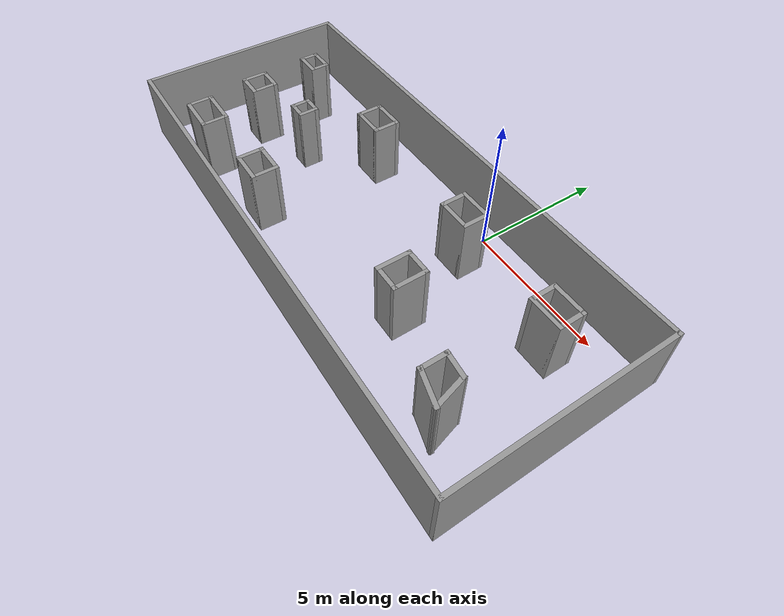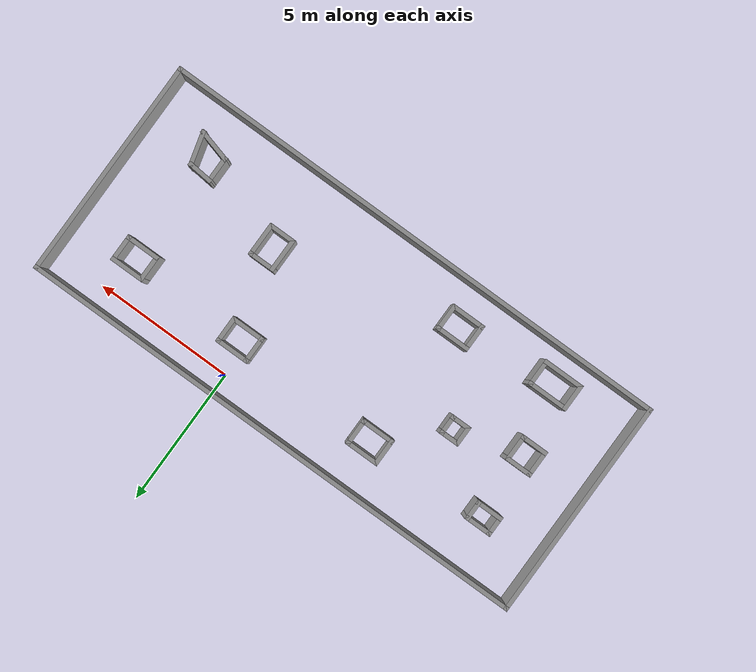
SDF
<?xml version='1.0'?>
<sdf version='1.6'>
  <model name='simple'>
    <pose frame=''>-2.4487 -3.24847 0 0 -0 0</pose>
    <link name='Wall_0'>
      <collision name='Wall_0_Collision'>
        <geometry>
          <box>
            <size>8 0.15 2.5</size>
          </box>
        </geometry>
        <pose frame=''>0 0 1.25 0 -0 0</pose>
      </collision>
      <visual name='Wall_0_Visual'>
        <pose frame=''>0 0 1.25 0 -0 0</pose>
        <geometry>
          <box>
            <size>8 0.15 2.5</size>
          </box>
        </geometry>
        <material>
          <script>
            <uri>file://media/materials/scripts/gazebo.material</uri>
            <name>Gazebo/Grey</name>
          </script>
          <ambient>1 1 1 1</ambient>
        </material>
        <meta>
          <layer>0</layer>
        </meta>
      </visual>
      <pose frame=''>-9.3 0 0 0 -0 -1.5708</pose>
    </link>
    <link name='Wall_1'>
      <collision name='Wall_1_Collision'>
        <geometry>
          <box>
            <size>18.75 0.15 2.5</size>
          </box>
        </geometry>
        <pose frame=''>0 0 1.25 0 -0 0</pose>
      </collision>
      <visual name='Wall_1_Visual'>
        <pose frame=''>0 0 1.25 0 -0 0</pose>
        <geometry>
          <box>
            <size>18.75 0.15 2.5</size>
          </box>
        </geometry>
        <material>
          <script>
            <uri>file://media/materials/scripts/gazebo.material</uri>
            <name>Gazebo/Grey</name>
          </script>
          <ambient>1 1 1 1</ambient>
        </material>
        <meta>
          <layer>0</layer>
        </meta>
      </visual>
      <pose frame=''>0 -3.925 0 0 -0 0</pose>
    </link>
    <link name='Wall_10'>
      <collision name='Wall_10_Collision'>
        <geometry>
          <box>
            <size>1 0.15 2.5</size>
          </box>
        </geometry>
        <pose frame=''>0 0 1.25 0 -0 0</pose>
      </collision>
      <visual name='Wall_10_Visual'>
        <pose frame=''>0 0 1.25 0 -0 0</pose>
        <geometry>
          <box>
            <size>1 0.15 2.5</size>
          </box>
        </geometry>
        <material>
          <script>
            <uri>file://media/materials/scripts/gazebo.material</uri>
            <name>Gazebo/Grey</name>
          </script>
          <ambient>1 1 1 1</ambient>
        </material>
        <meta>
          <layer>0</layer>
        </meta>
      </visual>
      <pose frame=''>-7.38016 -0.409073 0 0 -0 -1.5708</pose>
    </link>
    <link name='Wall_11'>
      <collision name='Wall_11_Collision'>
        <geometry>
          <box>
            <size>1 0.15 2.5</size>
          </box>
        </geometry>
        <pose frame=''>0 0 1.25 0 -0 0</pose>
      </collision>
      <visual name='Wall_11_Visual'>
        <pose frame=''>0 0 1.25 0 -0 0</pose>
        <geometry>
          <box>
            <size>1 0.15 2.5</size>
          </box>
        </geometry>
        <material>
          <script>
            <uri>file://media/materials/scripts/gazebo.material</uri>
            <name>Gazebo/Grey</name>
          </script>
          <ambient>1 1 1 1</ambient>
        </material>
        <meta>
          <layer>0</layer>
        </meta>
      </visual>
      <pose frame=''>-6.95516 -0.834073 0 0 -0 0</pose>
    </link>
    <link name='Wall_12'>
      <collision name='Wall_12_Collision'>
        <geometry>
          <box>
            <size>1 0.15 2.5</size>
          </box>
        </geometry>
        <pose frame=''>0 0 1.25 0 -0 0</pose>
      </collision>
      <visual name='Wall_12_Visual'>
        <pose frame=''>0 0 1.25 0 -0 0</pose>
        <geometry>
          <box>
            <size>1 0.15 2.5</size>
          </box>
        </geometry>
        <material>
          <script>
            <uri>file://media/materials/scripts/gazebo.material</uri>
            <name>Gazebo/Grey</name>
          </script>
          <ambient>1 1 1 1</ambient>
        </material>
        <meta>
          <layer>0</layer>
        </meta>
      </visual>
      <pose frame=''>-6.53016 -0.409073 0 0 -0 1.5708</pose>
    </link>
    <link name='Wall_13'>
      <collision name='Wall_13_Collision'>
        <geometry>
          <box>
            <size>1 0.15 2.5</size>
          </box>
        </geometry>
        <pose frame=''>0 0 1.25 0 -0 0</pose>
      </collision>
      <visual name='Wall_13_Visual'>
        <pose frame=''>0 0 1.25 0 -0 0</pose>
        <geometry>
          <box>
            <size>1 0.15 2.5</size>
          </box>
        </geometry>
        <material>
          <script>
            <uri>file://media/materials/scripts/gazebo.material</uri>
            <name>Gazebo/Grey</name>
          </script>
          <ambient>1 1 1 1</ambient>
        </material>
        <meta>
          <layer>0</layer>
        </meta>
      </visual>
      <pose frame=''>-6.95516 0.015927 0 0 -0 3.14159</pose>
    </link>
    <link name='Wall_15'>
      <collision name='Wall_15_Collision'>
        <geometry>
          <box>
            <size>1 0.15 2.5</size>
          </box>
        </geometry>
        <pose frame=''>0 0 1.25 0 -0 0</pose>
      </collision>
      <visual name='Wall_15_Visual'>
        <pose frame=''>0 0 1.25 0 -0 0</pose>
        <geometry>
          <box>
            <size>1 0.15 2.5</size>
          </box>
        </geometry>
        <material>
          <script>
            <uri>file://media/materials/scripts/gazebo.material</uri>
            <name>Gazebo/Grey</name>
          </script>
          <ambient>1 1 1 1</ambient>
        </material>
        <meta>
          <layer>0</layer>
        </meta>
      </visual>
      <pose frame=''>-7.05633 -2.79153 0 0 -0 -1.5708</pose>
    </link>
    <link name='Wall_16'>
      <collision name='Wall_16_Collision'>
        <geometry>
          <box>
            <size>1.5 0.15 2.5</size>
          </box>
        </geometry>
        <pose frame=''>0 0 1.25 0 -0 0</pose>
      </collision>
      <visual name='Wall_16_Visual'>
        <pose frame=''>0 0 1.25 0 -0 0</pose>
        <geometry>
          <box>
            <size>1.5 0.15 2.5</size>
          </box>
        </geometry>
        <material>
          <script>
            <uri>file://media/materials/scripts/gazebo.material</uri>
            <name>Gazebo/Grey</name>
          </script>
          <ambient>1 1 1 1</ambient>
        </material>
        <meta>
          <layer>0</layer>
        </meta>
      </visual>
      <pose frame=''>-6.38133 -3.21652 0 0 -0 0</pose>
    </link>
    <link name='Wall_17'>
      <collision name='Wall_17_Collision'>
        <geometry>
          <box>
            <size>1 0.15 2.5</size>
          </box>
        </geometry>
        <pose frame=''>0 0 1.25 0 -0 0</pose>
      </collision>
      <visual name='Wall_17_Visual'>
        <pose frame=''>0 0 1.25 0 -0 0</pose>
        <geometry>
          <box>
            <size>1 0.15 2.5</size>
          </box>
        </geometry>
        <material>
          <script>
            <uri>file://media/materials/scripts/gazebo.material</uri>
            <name>Gazebo/Grey</name>
          </script>
          <ambient>1 1 1 1</ambient>
        </material>
        <meta>
          <layer>0</layer>
        </meta>
      </visual>
      <pose frame=''>-5.70633 -2.79153 0 0 -0 1.5708</pose>
    </link>
    <link name='Wall_18'>
      <collision name='Wall_18_Collision'>
        <geometry>
          <box>
            <size>1.5 0.15 2.5</size>
          </box>
        </geometry>
        <pose frame=''>0 0 1.25 0 -0 0</pose>
      </collision>
      <visual name='Wall_18_Visual'>
        <pose frame=''>0 0 1.25 0 -0 0</pose>
        <geometry>
          <box>
            <size>1.5 0.15 2.5</size>
          </box>
        </geometry>
        <material>
          <script>
            <uri>file://media/materials/scripts/gazebo.material</uri>
            <name>Gazebo/Grey</name>
          </script>
          <ambient>1 1 1 1</ambient>
        </material>
        <meta>
          <layer>0</layer>
        </meta>
      </visual>
      <pose frame=''>-6.38133 -2.36653 0 0 -0 3.14159</pose>
    </link>
    <link name='Wall_2'>
      <collision name='Wall_2_Collision'>
        <geometry>
          <box>
            <size>8 0.15 2.5</size>
          </box>
        </geometry>
        <pose frame=''>0 0 1.25 0 -0 0</pose>
      </collision>
      <visual name='Wall_2_Visual'>
        <pose frame=''>0 0 1.25 0 -0 0</pose>
        <geometry>
          <box>
            <size>8 0.15 2.5</size>
          </box>
        </geometry>
        <material>
          <script>
            <uri>file://media/materials/scripts/gazebo.material</uri>
            <name>Gazebo/Grey</name>
          </script>
          <ambient>1 1 1 1</ambient>
        </material>
        <meta>
          <layer>0</layer>
        </meta>
      </visual>
      <pose frame=''>9.3 0 0 0 -0 1.5708</pose>
    </link>
    <link name='Wall_20'>
      <collision name='Wall_20_Collision'>
        <geometry>
          <box>
            <size>1 0.15 2.5</size>
          </box>
        </geometry>
        <pose frame=''>0 0 1.25 0 -0 0</pose>
      </collision>
      <visual name='Wall_20_Visual'>
        <pose frame=''>0 0 1.25 0 -0 0</pose>
        <geometry>
          <box>
            <size>1 0.15 2.5</size>
          </box>
        </geometry>
        <material>
          <script>
            <uri>file://media/materials/scripts/gazebo.material</uri>
            <name>Gazebo/Grey</name>
          </script>
          <ambient>1 1 1 1</ambient>
        </material>
        <meta>
          <layer>0</layer>
        </meta>
      </visual>
      <pose frame=''>-3.19352 2.18156 0 0 -0 -1.5708</pose>
    </link>
    <link name='Wall_21'>
      <collision name='Wall_21_Collision'>
        <geometry>
          <box>
            <size>1.25 0.15 2.5</size>
          </box>
        </geometry>
        <pose frame=''>0 0 1.25 0 -0 0</pose>
      </collision>
      <visual name='Wall_21_Visual'>
        <pose frame=''>0 0 1.25 0 -0 0</pose>
        <geometry>
          <box>
            <size>1.25 0.15 2.5</size>
          </box>
        </geometry>
        <material>
          <script>
            <uri>file://media/materials/scripts/gazebo.material</uri>
            <name>Gazebo/Grey</name>
          </script>
          <ambient>1 1 1 1</ambient>
        </material>
        <meta>
          <layer>0</layer>
        </meta>
      </visual>
      <pose frame=''>-2.64352 1.75656 0 0 -0 0</pose>
    </link>
    <link name='Wall_22'>
      <collision name='Wall_22_Collision'>
        <geometry>
          <box>
            <size>1 0.15 2.5</size>
          </box>
        </geometry>
        <pose frame=''>0 0 1.25 0 -0 0</pose>
      </collision>
      <visual name='Wall_22_Visual'>
        <pose frame=''>0 0 1.25 0 -0 0</pose>
        <geometry>
          <box>
            <size>1 0.15 2.5</size>
          </box>
        </geometry>
        <material>
          <script>
            <uri>file://media/materials/scripts/gazebo.material</uri>
            <name>Gazebo/Grey</name>
          </script>
          <ambient>1 1 1 1</ambient>
        </material>
        <meta>
          <layer>0</layer>
        </meta>
      </visual>
      <pose frame=''>-2.09352 2.18156 0 0 -0 1.5708</pose>
    </link>
    <link name='Wall_23'>
      <collision name='Wall_23_Collision'>
        <geometry>
          <box>
            <size>1.25 0.15 2.5</size>
          </box>
        </geometry>
        <pose frame=''>0 0 1.25 0 -0 0</pose>
      </collision>
      <visual name='Wall_23_Visual'>
        <pose frame=''>0 0 1.25 0 -0 0</pose>
        <geometry>
          <box>
            <size>1.25 0.15 2.5</size>
          </box>
        </geometry>
        <material>
          <script>
            <uri>file://media/materials/scripts/gazebo.material</uri>
            <name>Gazebo/Grey</name>
          </script>
          <ambient>1 1 1 1</ambient>
        </material>
        <meta>
          <layer>0</layer>
        </meta>
      </visual>
      <pose frame=''>-2.64352 2.60656 0 0 -0 3.14159</pose>
    </link>
    <link name='Wall_3'>
      <collision name='Wall_3_Collision'>
        <geometry>
          <box>
            <size>18.75 0.15 2.5</size>
          </box>
        </geometry>
        <pose frame=''>0 0 1.25 0 -0 0</pose>
      </collision>
      <visual name='Wall_3_Visual'>
        <pose frame=''>0 0 1.25 0 -0 0</pose>
        <geometry>
          <box>
            <size>18.75 0.15 2.5</size>
          </box>
        </geometry>
        <material>
          <script>
            <uri>file://media/materials/scripts/gazebo.material</uri>
            <name>Gazebo/Grey</name>
          </script>
          <ambient>1 1 1 1</ambient>
        </material>
        <meta>
          <layer>0</layer>
        </meta>
      </visual>
      <pose frame=''>0 3.925 0 0 -0 3.14159</pose>
    </link>
    <link name='Wall_30'>
      <collision name='Wall_30_Collision'>
        <geometry>
          <box>
            <size>1 0.15 2.5</size>
          </box>
        </geometry>
        <pose frame=''>0 0 1.25 0 -0 0</pose>
      </collision>
      <visual name='Wall_30_Visual'>
        <pose frame=''>0 0 1.25 0 -0 0</pose>
        <geometry>
          <box>
            <size>1 0.15 2.5</size>
          </box>
        </geometry>
        <material>
          <script>
            <uri>file://media/materials/scripts/gazebo.material</uri>
            <name>Gazebo/Grey</name>
          </script>
          <ambient>1 1 1 1</ambient>
        </material>
        <meta>
          <layer>0</layer>
        </meta>
      </visual>
      <pose frame=''>-3.37856 -2.49083 0 0 -0 -1.5708</pose>
    </link>
    <link name='Wall_31'>
      <collision name='Wall_31_Collision'>
        <geometry>
          <box>
            <size>1.25 0.15 2.5</size>
          </box>
        </geometry>
        <pose frame=''>0 0 1.25 0 -0 0</pose>
      </collision>
      <visual name='Wall_31_Visual'>
        <pose frame=''>0 0 1.25 0 -0 0</pose>
        <geometry>
          <box>
            <size>1.25 0.15 2.5</size>
          </box>
        </geometry>
        <material>
          <script>
            <uri>file://media/materials/scripts/gazebo.material</uri>
            <name>Gazebo/Grey</name>
          </script>
          <ambient>1 1 1 1</ambient>
        </material>
        <meta>
          <layer>0</layer>
        </meta>
      </visual>
      <pose frame=''>-2.82856 -2.91583 0 0 -0 0</pose>
    </link>
    <link name='Wall_32'>
      <collision name='Wall_32_Collision'>
        <geometry>
          <box>
            <size>1 0.15 2.5</size>
          </box>
        </geometry>
        <pose frame=''>0 0 1.25 0 -0 0</pose>
      </collision>
      <visual name='Wall_32_Visual'>
        <pose frame=''>0 0 1.25 0 -0 0</pose>
        <geometry>
          <box>
            <size>1 0.15 2.5</size>
          </box>
        </geometry>
        <material>
          <script>
            <uri>file://media/materials/scripts/gazebo.material</uri>
            <name>Gazebo/Grey</name>
          </script>
          <ambient>1 1 1 1</ambient>
        </material>
        <meta>
          <layer>0</layer>
        </meta>
      </visual>
      <pose frame=''>-2.27856 -2.49083 0 0 -0 1.5708</pose>
    </link>
    <link name='Wall_33'>
      <collision name='Wall_33_Collision'>
        <geometry>
          <box>
            <size>1.25 0.15 2.5</size>
          </box>
        </geometry>
        <pose frame=''>0 0 1.25 0 -0 0</pose>
      </collision>
      <visual name='Wall_33_Visual'>
        <pose frame=''>0 0 1.25 0 -0 0</pose>
        <geometry>
          <box>
            <size>1.25 0.15 2.5</size>
          </box>
        </geometry>
        <material>
          <script>
            <uri>file://media/materials/scripts/gazebo.material</uri>
            <name>Gazebo/Grey</name>
          </script>
          <ambient>1 1 1 1</ambient>
        </material>
        <meta>
          <layer>0</layer>
        </meta>
      </visual>
      <pose frame=''>-2.82856 -2.06583 0 0 -0 3.14159</pose>
    </link>
    <link name='Wall_35'>
      <collision name='Wall_35_Collision'>
        <geometry>
          <box>
            <size>1 0.15 2.5</size>
          </box>
        </geometry>
        <pose frame=''>0 0 1.25 0 -0 0</pose>
      </collision>
      <visual name='Wall_35_Visual'>
        <pose frame=''>0 0 1.25 0 -0 0</pose>
        <geometry>
          <box>
            <size>1 0.15 2.5</size>
          </box>
        </geometry>
        <material>
          <script>
            <uri>file://media/materials/scripts/gazebo.material</uri>
            <name>Gazebo/Grey</name>
          </script>
          <ambient>1 1 1 1</ambient>
        </material>
        <meta>
          <layer>0</layer>
        </meta>
      </visual>
      <pose frame=''>2.10339 1.97338 0 0 -0 -1.5708</pose>
    </link>
    <link name='Wall_36'>
      <collision name='Wall_36_Collision'>
        <geometry>
          <box>
            <size>1.25 0.15 2.5</size>
          </box>
        </geometry>
        <pose frame=''>0 0 1.25 0 -0 0</pose>
      </collision>
      <visual name='Wall_36_Visual'>
        <pose frame=''>0 0 1.25 0 -0 0</pose>
        <geometry>
          <box>
            <size>1.25 0.15 2.5</size>
          </box>
        </geometry>
        <material>
          <script>
            <uri>file://media/materials/scripts/gazebo.material</uri>
            <name>Gazebo/Grey</name>
          </script>
          <ambient>1 1 1 1</ambient>
        </material>
        <meta>
          <layer>0</layer>
        </meta>
      </visual>
      <pose frame=''>2.65339 1.54838 0 0 -0 0</pose>
    </link>
    <link name='Wall_37'>
      <collision name='Wall_37_Collision'>
        <geometry>
          <box>
            <size>1 0.15 2.5</size>
          </box>
        </geometry>
        <pose frame=''>0 0 1.25 0 -0 0</pose>
      </collision>
      <visual name='Wall_37_Visual'>
        <pose frame=''>0 0 1.25 0 -0 0</pose>
        <geometry>
          <box>
            <size>1 0.15 2.5</size>
          </box>
        </geometry>
        <material>
          <script>
            <uri>file://media/materials/scripts/gazebo.material</uri>
            <name>Gazebo/Grey</name>
          </script>
          <ambient>1 1 1 1</ambient>
        </material>
        <meta>
          <layer>0</layer>
        </meta>
      </visual>
      <pose frame=''>3.20339 1.97338 0 0 -0 1.5708</pose>
    </link>
    <link name='Wall_38'>
      <collision name='Wall_38_Collision'>
        <geometry>
          <box>
            <size>1.25 0.15 2.5</size>
          </box>
        </geometry>
        <pose frame=''>0 0 1.25 0 -0 0</pose>
      </collision>
      <visual name='Wall_38_Visual'>
        <pose frame=''>0 0 1.25 0 -0 0</pose>
        <geometry>
          <box>
            <size>1.25 0.15 2.5</size>
          </box>
        </geometry>
        <material>
          <script>
            <uri>file://media/materials/scripts/gazebo.material</uri>
            <name>Gazebo/Grey</name>
          </script>
          <ambient>1 1 1 1</ambient>
        </material>
        <meta>
          <layer>0</layer>
        </meta>
      </visual>
      <pose frame=''>2.65339 2.39838 0 0 -0 3.14159</pose>
    </link>
    <link name='Wall_40'>
      <collision name='Wall_40_Collision'>
        <geometry>
          <box>
            <size>1.25 0.15 2.5</size>
          </box>
        </geometry>
        <pose frame=''>0 0 1.25 0 -0 0</pose>
      </collision>
      <visual name='Wall_40_Visual'>
        <pose frame=''>0 0 1.25 0 -0 0</pose>
        <geometry>
          <box>
            <size>1.25 0.15 2.5</size>
          </box>
        </geometry>
        <material>
          <script>
            <uri>file://media/materials/scripts/gazebo.material</uri>
            <name>Gazebo/Grey</name>
          </script>
          <ambient>1 1 1 1</ambient>
        </material>
        <meta>
          <layer>0</layer>
        </meta>
      </visual>
      <pose frame=''>3.14427 -1.01982 0 0 -0 -1.5708</pose>
    </link>
    <link name='Wall_41'>
      <collision name='Wall_41_Collision'>
        <geometry>
          <box>
            <size>1 0.15 2.5</size>
          </box>
        </geometry>
        <pose frame=''>0 0 1.25 0 -0 0</pose>
      </collision>
      <visual name='Wall_41_Visual'>
        <pose frame=''>0 0 1.25 0 -0 0</pose>
        <geometry>
          <box>
            <size>1 0.15 2.5</size>
          </box>
        </geometry>
        <material>
          <script>
            <uri>file://media/materials/scripts/gazebo.material</uri>
            <name>Gazebo/Grey</name>
          </script>
          <ambient>1 1 1 1</ambient>
        </material>
        <meta>
          <layer>0</layer>
        </meta>
      </visual>
      <pose frame=''>3.56927 -1.56981 0 0 -0 0</pose>
    </link>
    <link name='Wall_42'>
      <collision name='Wall_42_Collision'>
        <geometry>
          <box>
            <size>1.25 0.15 2.5</size>
          </box>
        </geometry>
        <pose frame=''>0 0 1.25 0 -0 0</pose>
      </collision>
      <visual name='Wall_42_Visual'>
        <pose frame=''>0 0 1.25 0 -0 0</pose>
        <geometry>
          <box>
            <size>1.25 0.15 2.5</size>
          </box>
        </geometry>
        <material>
          <script>
            <uri>file://media/materials/scripts/gazebo.material</uri>
            <name>Gazebo/Grey</name>
          </script>
          <ambient>1 1 1 1</ambient>
        </material>
        <meta>
          <layer>0</layer>
        </meta>
      </visual>
      <pose frame=''>3.99427 -1.01982 0 0 -0 1.5708</pose>
    </link>
    <link name='Wall_43'>
      <collision name='Wall_43_Collision'>
        <geometry>
          <box>
            <size>1 0.15 2.5</size>
          </box>
        </geometry>
        <pose frame=''>0 0 1.25 0 -0 0</pose>
      </collision>
      <visual name='Wall_43_Visual'>
        <pose frame=''>0 0 1.25 0 -0 0</pose>
        <geometry>
          <box>
            <size>1 0.15 2.5</size>
          </box>
        </geometry>
        <material>
          <script>
            <uri>file://media/materials/scripts/gazebo.material</uri>
            <name>Gazebo/Grey</name>
          </script>
          <ambient>1 1 1 1</ambient>
        </material>
        <meta>
          <layer>0</layer>
        </meta>
      </visual>
      <pose frame=''>3.56927 -0.469815 0 0 -0 3.14159</pose>
    </link>
    <link name='Wall_45'>
      <collision name='Wall_45_Collision'>
        <geometry>
          <box>
            <size>1 0.15 2.5</size>
          </box>
        </geometry>
        <pose frame=''>0 0 1.25 0 -0 0</pose>
      </collision>
      <visual name='Wall_45_Visual'>
        <pose frame=''>0 0 1.25 0 -0 0</pose>
        <geometry>
          <box>
            <size>1 0.15 2.5</size>
          </box>
        </geometry>
        <material>
          <script>
            <uri>file://media/materials/scripts/gazebo.material</uri>
            <name>Gazebo/Grey</name>
          </script>
          <ambient>1 1 1 1</ambient>
        </material>
        <meta>
          <layer>0</layer>
        </meta>
      </visual>
      <pose frame=''>6.45194 -2.00508 0 0 -0 -1.5708</pose>
    </link>
    <link name='Wall_46'>
      <collision name='Wall_46_Collision'>
        <geometry>
          <box>
            <size>1.25 0.15 2.5</size>
          </box>
        </geometry>
        <pose frame=''>0 0 1.25 0 -0 0</pose>
      </collision>
      <visual name='Wall_46_Visual'>
        <pose frame=''>0 0 1.25 0 -0 0</pose>
        <geometry>
          <box>
            <size>1.25 0.15 2.5</size>
          </box>
        </geometry>
        <material>
          <script>
            <uri>file://media/materials/scripts/gazebo.material</uri>
            <name>Gazebo/Grey</name>
          </script>
          <ambient>1 1 1 1</ambient>
        </material>
        <meta>
          <layer>0</layer>
        </meta>
      </visual>
      <pose frame=''>6.9832 -2.57244 0 0 -0 -0.261799</pose>
    </link>
    <link name='Wall_47'>
      <collision name='Wall_47_Collision'>
        <geometry>
          <box>
            <size>1.25 0.15 2.5</size>
          </box>
        </geometry>
        <pose frame=''>0 0 1.25 0 -0 0</pose>
      </collision>
      <visual name='Wall_47_Visual'>
        <pose frame=''>0 0 1.25 0 -0 0</pose>
        <geometry>
          <box>
            <size>1.25 0.15 2.5</size>
          </box>
        </geometry>
        <material>
          <script>
            <uri>file://media/materials/scripts/gazebo.material</uri>
            <name>Gazebo/Grey</name>
          </script>
          <ambient>1 1 1 1</ambient>
        </material>
        <meta>
          <layer>0</layer>
        </meta>
      </visual>
      <pose frame=''>7.37211 -2.18353 0 0 -0 1.8326</pose>
    </link>
    <link name='Wall_48'>
      <collision name='Wall_48_Collision'>
        <geometry>
          <box>
            <size>0.93116 0.15 2.5</size>
          </box>
        </geometry>
        <pose frame=''>0 0 1.25 0 -0 0</pose>
      </collision>
      <visual name='Wall_48_Visual'>
        <pose frame=''>0 0 1.25 0 -0 0</pose>
        <geometry>
          <box>
            <size>0.93116 0.15 2.5</size>
          </box>
        </geometry>
        <material>
          <script>
            <uri>file://media/materials/scripts/gazebo.material</uri>
            <name>Gazebo/Grey</name>
          </script>
          <ambient>1 1 1 1</ambient>
        </material>
        <meta>
          <layer>0</layer>
        </meta>
      </visual>
      <pose frame=''>6.84085 -1.61618 0 0 -0 3.04906</pose>
    </link>
    <link name='Wall_5'>
      <collision name='Wall_5_Collision'>
        <geometry>
          <box>
            <size>0.75 0.15 2.5</size>
          </box>
        </geometry>
        <pose frame=''>0 0 1.25 0 -0 0</pose>
      </collision>
      <visual name='Wall_5_Visual'>
        <pose frame=''>0 0 1.25 0 -0 0</pose>
        <geometry>
          <box>
            <size>0.75 0.15 2.5</size>
          </box>
        </geometry>
        <material>
          <script>
            <uri>file://media/materials/scripts/gazebo.material</uri>
            <name>Gazebo/Grey</name>
          </script>
          <ambient>1 1 1 1</ambient>
        </material>
        <meta>
          <layer>0</layer>
        </meta>
      </visual>
      <pose frame=''>-7.44955 2.00586 0 0 -0 -1.5708</pose>
    </link>
    <link name='Wall_50'>
      <collision name='Wall_50_Collision'>
        <geometry>
          <box>
            <size>1 0.15 2.5</size>
          </box>
        </geometry>
        <pose frame=''>0 0 1.25 0 -0 0</pose>
      </collision>
      <visual name='Wall_50_Visual'>
        <pose frame=''>0 0 1.25 0 -0 0</pose>
        <geometry>
          <box>
            <size>1 0.15 2.5</size>
          </box>
        </geometry>
        <material>
          <script>
            <uri>file://media/materials/scripts/gazebo.material</uri>
            <name>Gazebo/Grey</name>
          </script>
          <ambient>1 1 1 1</ambient>
        </material>
        <meta>
          <layer>0</layer>
        </meta>
      </visual>
      <pose frame=''>6.35942 1.8346 0 0 -0 -1.5708</pose>
    </link>
    <link name='Wall_51'>
      <collision name='Wall_51_Collision'>
        <geometry>
          <box>
            <size>1.25 0.15 2.5</size>
          </box>
        </geometry>
        <pose frame=''>0 0 1.25 0 -0 0</pose>
      </collision>
      <visual name='Wall_51_Visual'>
        <pose frame=''>0 0 1.25 0 -0 0</pose>
        <geometry>
          <box>
            <size>1.25 0.15 2.5</size>
          </box>
        </geometry>
        <material>
          <script>
            <uri>file://media/materials/scripts/gazebo.material</uri>
            <name>Gazebo/Grey</name>
          </script>
          <ambient>1 1 1 1</ambient>
        </material>
        <meta>
          <layer>0</layer>
        </meta>
      </visual>
      <pose frame=''>6.90942 1.4096 0 0 -0 0</pose>
    </link>
    <link name='Wall_52'>
      <collision name='Wall_52_Collision'>
        <geometry>
          <box>
            <size>1 0.15 2.5</size>
          </box>
        </geometry>
        <pose frame=''>0 0 1.25 0 -0 0</pose>
      </collision>
      <visual name='Wall_52_Visual'>
        <pose frame=''>0 0 1.25 0 -0 0</pose>
        <geometry>
          <box>
            <size>1 0.15 2.5</size>
          </box>
        </geometry>
        <material>
          <script>
            <uri>file://media/materials/scripts/gazebo.material</uri>
            <name>Gazebo/Grey</name>
          </script>
          <ambient>1 1 1 1</ambient>
        </material>
        <meta>
          <layer>0</layer>
        </meta>
      </visual>
      <pose frame=''>7.45942 1.8346 0 0 -0 1.5708</pose>
    </link>
    <link name='Wall_53'>
      <collision name='Wall_53_Collision'>
        <geometry>
          <box>
            <size>1.25 0.15 2.5</size>
          </box>
        </geometry>
        <pose frame=''>0 0 1.25 0 -0 0</pose>
      </collision>
      <visual name='Wall_53_Visual'>
        <pose frame=''>0 0 1.25 0 -0 0</pose>
        <geometry>
          <box>
            <size>1.25 0.15 2.5</size>
          </box>
        </geometry>
        <material>
          <script>
            <uri>file://media/materials/scripts/gazebo.material</uri>
            <name>Gazebo/Grey</name>
          </script>
          <ambient>1 1 1 1</ambient>
        </material>
        <meta>
          <layer>0</layer>
        </meta>
      </visual>
      <pose frame=''>6.90942 2.2596 0 0 -0 3.14159</pose>
    </link>
    <link name='Wall_55'>
      <collision name='Wall_55_Collision'>
        <geometry>
          <box>
            <size>0.75 0.15 2.5</size>
          </box>
        </geometry>
        <pose frame=''>0 0 1.25 0 -0 0</pose>
      </collision>
      <visual name='Wall_55_Visual'>
        <pose frame=''>0 0 1.25 0 -0 0</pose>
        <geometry>
          <box>
            <size>0.75 0.15 2.5</size>
          </box>
        </geometry>
        <material>
          <script>
            <uri>file://media/materials/scripts/gazebo.material</uri>
            <name>Gazebo/Grey</name>
          </script>
          <ambient>1 1 1 1</ambient>
        </material>
        <meta>
          <layer>0</layer>
        </meta>
      </visual>
      <pose frame=''>-4.92831 0.271062 0 0 -0 -1.5708</pose>
    </link>
    <link name='Wall_56'>
      <collision name='Wall_56_Collision'>
        <geometry>
          <box>
            <size>0.75 0.15 2.5</size>
          </box>
        </geometry>
        <pose frame=''>0 0 1.25 0 -0 0</pose>
      </collision>
      <visual name='Wall_56_Visual'>
        <pose frame=''>0 0 1.25 0 -0 0</pose>
        <geometry>
          <box>
            <size>0.75 0.15 2.5</size>
          </box>
        </geometry>
        <material>
          <script>
            <uri>file://media/materials/scripts/gazebo.material</uri>
            <name>Gazebo/Grey</name>
          </script>
          <ambient>1 1 1 1</ambient>
        </material>
        <meta>
          <layer>0</layer>
        </meta>
      </visual>
      <pose frame=''>-4.62831 -0.028938 0 0 -0 0</pose>
    </link>
    <link name='Wall_57'>
      <collision name='Wall_57_Collision'>
        <geometry>
          <box>
            <size>0.75 0.15 2.5</size>
          </box>
        </geometry>
        <pose frame=''>0 0 1.25 0 -0 0</pose>
      </collision>
      <visual name='Wall_57_Visual'>
        <pose frame=''>0 0 1.25 0 -0 0</pose>
        <geometry>
          <box>
            <size>0.75 0.15 2.5</size>
          </box>
        </geometry>
        <material>
          <script>
            <uri>file://media/materials/scripts/gazebo.material</uri>
            <name>Gazebo/Grey</name>
          </script>
          <ambient>1 1 1 1</ambient>
        </material>
        <meta>
          <layer>0</layer>
        </meta>
      </visual>
      <pose frame=''>-4.32831 0.271062 0 0 -0 1.5708</pose>
    </link>
    <link name='Wall_58'>
      <collision name='Wall_58_Collision'>
        <geometry>
          <box>
            <size>0.75 0.15 2.5</size>
          </box>
        </geometry>
        <pose frame=''>0 0 1.25 0 -0 0</pose>
      </collision>
      <visual name='Wall_58_Visual'>
        <pose frame=''>0 0 1.25 0 -0 0</pose>
        <geometry>
          <box>
            <size>0.75 0.15 2.5</size>
          </box>
        </geometry>
        <material>
          <script>
            <uri>file://media/materials/scripts/gazebo.material</uri>
            <name>Gazebo/Grey</name>
          </script>
          <ambient>1 1 1 1</ambient>
        </material>
        <meta>
          <layer>0</layer>
        </meta>
      </visual>
      <pose frame=''>-4.62831 0.571062 0 0 -0 3.14159</pose>
    </link>
    <link name='Wall_6'>
      <collision name='Wall_6_Collision'>
        <geometry>
          <box>
            <size>1 0.15 2.5</size>
          </box>
        </geometry>
        <pose frame=''>0 0 1.25 0 -0 0</pose>
      </collision>
      <visual name='Wall_6_Visual'>
        <pose frame=''>0 0 1.25 0 -0 0</pose>
        <geometry>
          <box>
            <size>1 0.15 2.5</size>
          </box>
        </geometry>
        <material>
          <script>
            <uri>file://media/materials/scripts/gazebo.material</uri>
            <name>Gazebo/Grey</name>
          </script>
          <ambient>1 1 1 1</ambient>
        </material>
        <meta>
          <layer>0</layer>
        </meta>
      </visual>
      <pose frame=''>-7.02455 1.70586 0 0 -0 0</pose>
    </link>
    <link name='Wall_7'>
      <collision name='Wall_7_Collision'>
        <geometry>
          <box>
            <size>0.75 0.15 2.5</size>
          </box>
        </geometry>
        <pose frame=''>0 0 1.25 0 -0 0</pose>
      </collision>
      <visual name='Wall_7_Visual'>
        <pose frame=''>0 0 1.25 0 -0 0</pose>
        <geometry>
          <box>
            <size>0.75 0.15 2.5</size>
          </box>
        </geometry>
        <material>
          <script>
            <uri>file://media/materials/scripts/gazebo.material</uri>
            <name>Gazebo/Grey</name>
          </script>
          <ambient>1 1 1 1</ambient>
        </material>
        <meta>
          <layer>0</layer>
        </meta>
      </visual>
      <pose frame=''>-6.59955 2.00586 0 0 -0 1.5708</pose>
    </link>
    <link name='Wall_8'>
      <collision name='Wall_8_Collision'>
        <geometry>
          <box>
            <size>1 0.15 2.5</size>
          </box>
        </geometry>
        <pose frame=''>0 0 1.25 0 -0 0</pose>
      </collision>
      <visual name='Wall_8_Visual'>
        <pose frame=''>0 0 1.25 0 -0 0</pose>
        <geometry>
          <box>
            <size>1 0.15 2.5</size>
          </box>
        </geometry>
        <material>
          <script>
            <uri>file://media/materials/scripts/gazebo.material</uri>
            <name>Gazebo/Grey</name>
          </script>
          <ambient>1 1 1 1</ambient>
        </material>
        <meta>
          <layer>0</layer>
        </meta>
      </visual>
      <pose frame=''>-7.02455 2.30586 0 0 -0 3.14159</pose>
    </link>
    <static>1</static>
  </model>
</sdf>
